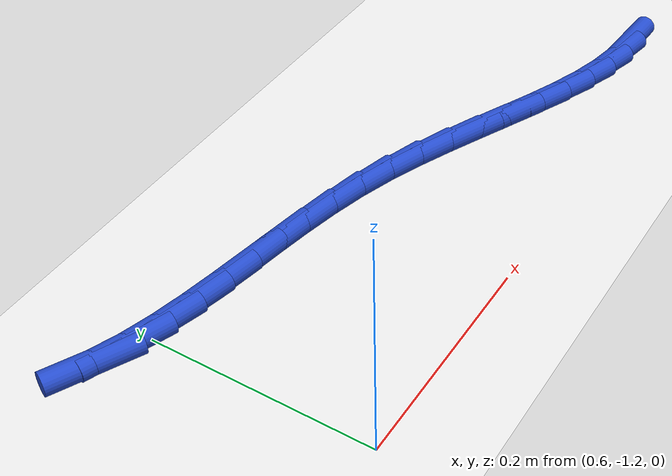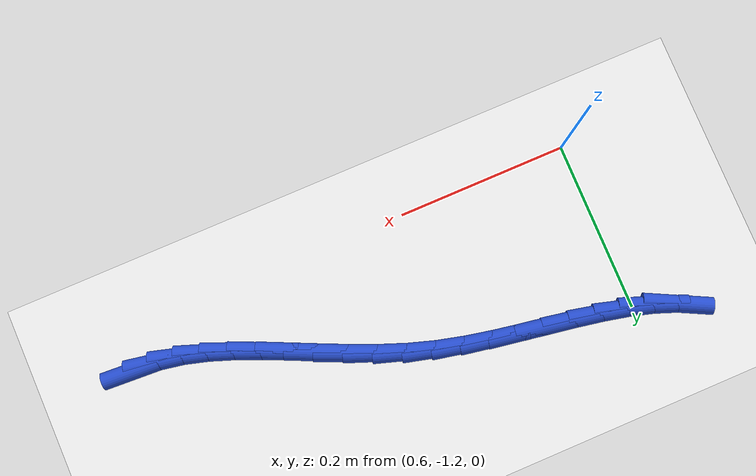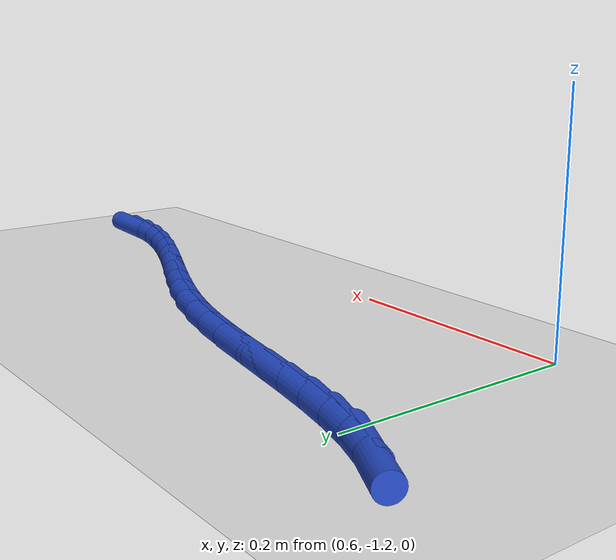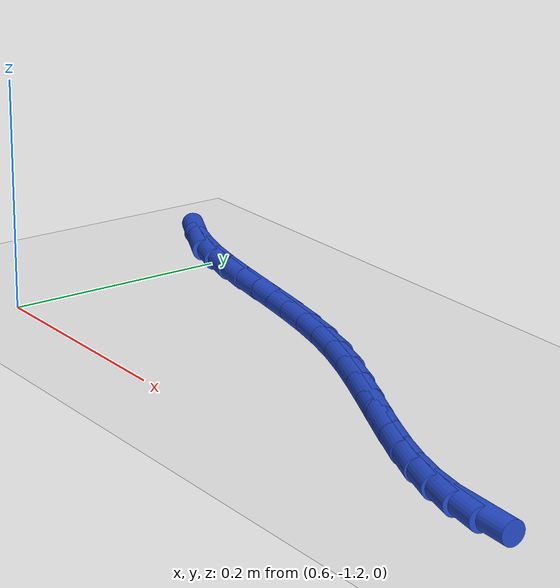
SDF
<sdf version="1.6">
 <world name="default">
  <model name="ground_plane">
   <static>1</static>
   <link name="link">
    <collision name="collision">
     <geometry><plane><normal>0 0 1</normal><size>100 100</size></plane></geometry>
     <surface><friction><ode><mu>100</mu><mu2>50</mu2></ode></friction></surface>
    </collision>
    <visual name="visual">
     <cast_shadows>0</cast_shadows>
     <geometry><plane><normal>0 0 1</normal><size>100 100</size></plane></geometry>
     <material>
      <script><uri>file://media/materials/scripts/gazebo.material</uri><name>Gazebo/WhiteGlow</name></script>
     </material>
    </visual>
   </link>
  </model>
  <model name="line">
   <link name="link_190">
    <pose>1.1425634087953735 -1.1544855479764329 0.01 0 1.57 -0.054360927744203126</pose>
    <collision name="collision">
     <geometry><cylinder><radius>0.01</radius><length>0.08</length></cylinder></geometry>
    </collision>
    <visual name="visual">
     <material>
      <script><name>Gazebo/Blue</name><uri>file://media/materials/scripts/gazebo.material</uri></script>
     </material>
     <geometry><cylinder><radius>0.01</radius><length>0.08</length></cylinder></geometry>
    </visual>
   </link>
   <link name="link_191">
    <pose>1.1157303102521714 -1.1530254372991637 0.01 0 1.57 -0.17949591483256455</pose>
    <collision name="collision">
     <geometry><cylinder><radius>0.01</radius><length>0.08</length></cylinder></geometry>
    </collision>
    <visual name="visual">
     <material>
      <script><name>Gazebo/Blue</name><uri>file://media/materials/scripts/gazebo.material</uri></script>
     </material>
     <geometry><cylinder><radius>0.01</radius><length>0.08</length></cylinder></geometry>
    </visual>
   </link>
   <link name="link_192">
    <pose>1.0885197445645733 -1.1480881128114293 0.01 0 1.57 -0.27642877284132217</pose>
    <collision name="collision">
     <geometry><cylinder><radius>0.01</radius><length>0.08</length></cylinder></geometry>
    </collision>
    <visual name="visual">
     <material>
      <script><name>Gazebo/Blue</name><uri>file://media/materials/scripts/gazebo.material</uri></script>
     </material>
     <geometry><cylinder><radius>0.01</radius><length>0.08</length></cylinder></geometry>
    </visual>
   </link>
   <link name="link_193">
    <pose>1.060913994774252 -1.140256589262961 0.01 0 1.57 -0.347323608659663</pose>
    <collision name="collision">
     <geometry><cylinder><radius>0.01</radius><length>0.08</length></cylinder></geometry>
    </collision>
    <visual name="visual">
     <material>
      <script><name>Gazebo/Blue</name><uri>file://media/materials/scripts/gazebo.material</uri></script>
     </material>
     <geometry><cylinder><radius>0.01</radius><length>0.08</length></cylinder></geometry>
    </visual>
   </link>
   <link name="link_194">
    <pose>1.0328953439228798 -1.1301138814034901 0.01 0 1.57 -0.39530063164592594</pose>
    <collision name="collision">
     <geometry><cylinder><radius>0.01</radius><length>0.08</length></cylinder></geometry>
    </collision>
    <visual name="visual">
     <material>
      <script><name>Gazebo/Blue</name><uri>file://media/materials/scripts/gazebo.material</uri></script>
     </material>
     <geometry><cylinder><radius>0.01</radius><length>0.08</length></cylinder></geometry>
    </visual>
   </link>
   <link name="link_195">
    <pose>1.0044460750521298 -1.1182430039827487 0.01 0 1.57 -0.4232023814136894</pose>
    <collision name="collision">
     <geometry><cylinder><radius>0.01</radius><length>0.08</length></cylinder></geometry>
    </collision>
    <visual name="visual">
     <material>
      <script><name>Gazebo/Blue</name><uri>file://media/materials/scripts/gazebo.material</uri></script>
     </material>
     <geometry><cylinder><radius>0.01</radius><length>0.08</length></cylinder></geometry>
    </visual>
   </link>
   <link name="link_196">
    <pose>0.9755484712036744 -1.105226971750467 0.01 0 1.57 -0.4331295103324267</pose>
    <collision name="collision">
     <geometry><cylinder><radius>0.01</radius><length>0.08</length></cylinder></geometry>
    </collision>
    <visual name="visual">
     <material>
      <script><name>Gazebo/Blue</name><uri>file://media/materials/scripts/gazebo.material</uri></script>
     </material>
     <geometry><cylinder><radius>0.01</radius><length>0.08</length></cylinder></geometry>
    </visual>
   </link>
   <link name="link_197">
    <pose>0.9461848154191852 -1.0916487994563768 0.01 0 1.57 -0.4263577442685115</pose>
    <collision name="collision">
     <geometry><cylinder><radius>0.01</radius><length>0.08</length></cylinder></geometry>
    </collision>
    <visual name="visual">
     <material>
      <script><name>Gazebo/Blue</name><uri>file://media/materials/scripts/gazebo.material</uri></script>
     </material>
     <geometry><cylinder><radius>0.01</radius><length>0.08</length></cylinder></geometry>
    </visual>
   </link>
   <link name="link_198">
    <pose>0.9163373907403356 -1.0780915018502093 0.01 0 1.57 -0.40340802072109594</pose>
    <collision name="collision">
     <geometry><cylinder><radius>0.01</radius><length>0.08</length></cylinder></geometry>
    </collision>
    <visual name="visual">
     <material>
      <script><name>Gazebo/Blue</name><uri>file://media/materials/scripts/gazebo.material</uri></script>
     </material>
     <geometry><cylinder><radius>0.01</radius><length>0.08</length></cylinder></geometry>
    </visual>
   </link>
   <link name="link_199">
    <pose>0.8859884802087978 -1.0651380936816965 0.01 0 1.57 -0.3641832729710937</pose>
    <collision name="collision">
     <geometry><cylinder><radius>0.01</radius><length>0.08</length></cylinder></geometry>
    </collision>
    <visual name="visual">
     <material>
      <script><name>Gazebo/Blue</name><uri>file://media/materials/scripts/gazebo.material</uri></script>
     </material>
     <geometry><cylinder><radius>0.01</radius><length>0.08</length></cylinder></geometry>
    </visual>
   </link>
   <link name="link_200">
    <pose>0.8551203668662443 -1.0533715897005689 0.01 0 1.57 -0.3084958431424122</pose>
    <collision name="collision">
     <geometry><cylinder><radius>0.01</radius><length>0.08</length></cylinder></geometry>
    </collision>
    <visual name="visual">
     <material>
      <script><name>Gazebo/Blue</name><uri>file://media/materials/scripts/gazebo.material</uri></script>
     </material>
     <geometry><cylinder><radius>0.01</radius><length>0.08</length></cylinder></geometry>
    </visual>
   </link>
   <link name="link_201">
    <pose>0.8237181330116777 -1.0433646459744963 0.01 0 1.57 -0.24930686379300504</pose>
    <collision name="collision">
     <geometry><cylinder><radius>0.01</radius><length>0.08</length></cylinder></geometry>
    </collision>
    <visual name="visual">
     <material>
      <script><name>Gazebo/Blue</name><uri>file://media/materials/scripts/gazebo.material</uri></script>
     </material>
     <geometry><cylinder><radius>0.01</radius><length>0.08</length></cylinder></geometry>
    </visual>
   </link>
   <link name="link_202">
    <pose>0.791883212930091 -1.0352593567870998 0.01 0 1.57 -0.2044573409006646</pose>
    <collision name="collision">
     <geometry><cylinder><radius>0.01</radius><length>0.08</length></cylinder></geometry>
    </collision>
    <visual name="visual">
     <material>
      <script><name>Gazebo/Blue</name><uri>file://media/materials/scripts/gazebo.material</uri></script>
     </material>
     <geometry><cylinder><radius>0.01</radius><length>0.08</length></cylinder></geometry>
    </visual>
   </link>
   <link name="link_203">
    <pose>0.7598726932871118 -1.0286218231020008 0.01 0 1.57 -0.1750148897377592</pose>
    <collision name="collision">
     <geometry><cylinder><radius>0.01</radius><length>0.08</length></cylinder></geometry>
    </collision>
    <visual name="visual">
     <material>
      <script><name>Gazebo/Blue</name><uri>file://media/materials/scripts/gazebo.material</uri></script>
     </material>
     <geometry><cylinder><radius>0.01</radius><length>0.08</length></cylinder></geometry>
    </visual>
   </link>
   <link name="link_204">
    <pose>0.7279545293348373 -1.0229779265609111 0.01 0 1.57 -0.1609754089245833</pose>
    <collision name="collision">
     <geometry><cylinder><radius>0.01</radius><length>0.08</length></cylinder></geometry>
    </collision>
    <visual name="visual">
     <material>
      <script><name>Gazebo/Blue</name><uri>file://media/materials/scripts/gazebo.material</uri></script>
     </material>
     <geometry><cylinder><radius>0.01</radius><length>0.08</length></cylinder></geometry>
    </visual>
   </link>
   <link name="link_205">
    <pose>0.6963966763253631 -1.0178535488055431 0.01 0 1.57 -0.16275839969880274</pose>
    <collision name="collision">
     <geometry><cylinder><radius>0.01</radius><length>0.08</length></cylinder></geometry>
    </collision>
    <visual name="visual">
     <material>
      <script><name>Gazebo/Blue</name><uri>file://media/materials/scripts/gazebo.material</uri></script>
     </material>
     <geometry><cylinder><radius>0.01</radius><length>0.08</length></cylinder></geometry>
    </visual>
   </link>
   <link name="link_206">
    <pose>0.6654670895107853 -1.0127745714776093 0.01 0 1.57 -0.18137061578803143</pose>
    <collision name="collision">
     <geometry><cylinder><radius>0.01</radius><length>0.08</length></cylinder></geometry>
    </collision>
    <visual name="visual">
     <material>
      <script><name>Gazebo/Blue</name><uri>file://media/materials/scripts/gazebo.material</uri></script>
     </material>
     <geometry><cylinder><radius>0.01</radius><length>0.08</length></cylinder></geometry>
    </visual>
   </link>
   <link name="link_207">
    <pose>0.6354337241432004 -1.0072668762188213 0.01 0 1.57 -0.21850905442777882</pose>
    <collision name="collision">
     <geometry><cylinder><radius>0.01</radius><length>0.08</length></cylinder></geometry>
    </collision>
    <visual name="visual">
     <material>
      <script><name>Gazebo/Blue</name><uri>file://media/materials/scripts/gazebo.material</uri></script>
     </material>
     <geometry><cylinder><radius>0.01</radius><length>0.08</length></cylinder></geometry>
    </visual>
   </link>
   <link name="link_208">
    <pose>0.6065645354747042 -1.0008563446708914 0.01 0 1.57 -0.27655760781085</pose>
    <collision name="collision">
     <geometry><cylinder><radius>0.01</radius><length>0.08</length></cylinder></geometry>
    </collision>
    <visual name="visual">
     <material>
      <script><name>Gazebo/Blue</name><uri>file://media/materials/scripts/gazebo.material</uri></script>
     </material>
     <geometry><cylinder><radius>0.01</radius><length>0.08</length></cylinder></geometry>
    </visual>
   </link>
   <link name="link_209">
    <pose>0.5791274787573938 -0.9930688584755316 0.01 0 1.57 -0.3583344269184103</pose>
    <collision name="collision">
     <geometry><cylinder><radius>0.01</radius><length>0.08</length></cylinder></geometry>
    </collision>
    <visual name="visual">
     <material>
      <script><name>Gazebo/Blue</name><uri>file://media/materials/scripts/gazebo.material</uri></script>
     </material>
     <geometry><cylinder><radius>0.01</radius><length>0.08</length></cylinder></geometry>
    </visual>
   </link>
   <link name="link_210">
    <pose>0.5533905092433633 -0.9834302992744537 0.01 0 1.57 -0.4663126412623975</pose>
    <collision name="collision">
     <geometry><cylinder><radius>0.01</radius><length>0.08</length></cylinder></geometry>
    </collision>
    <visual name="visual">
     <material>
      <script><name>Gazebo/Blue</name><uri>file://media/materials/scripts/gazebo.material</uri></script>
     </material>
     <geometry><cylinder><radius>0.01</radius><length>0.08</length></cylinder></geometry>
    </visual>
   </link>
  </model>
 </world>
</sdf>
